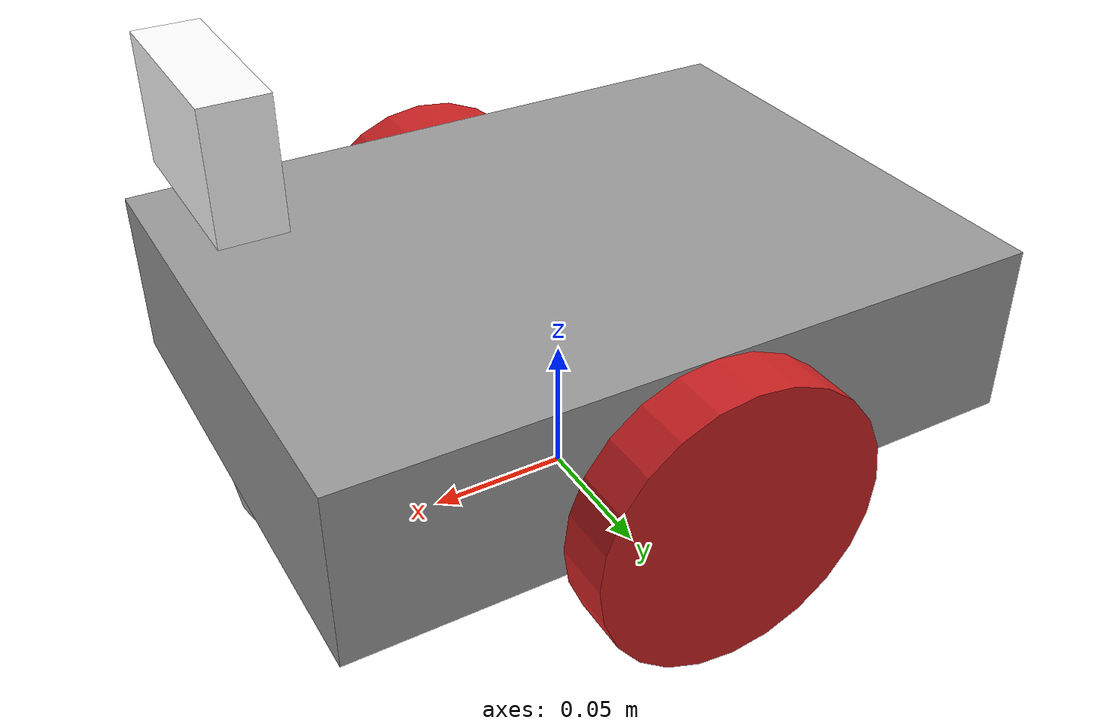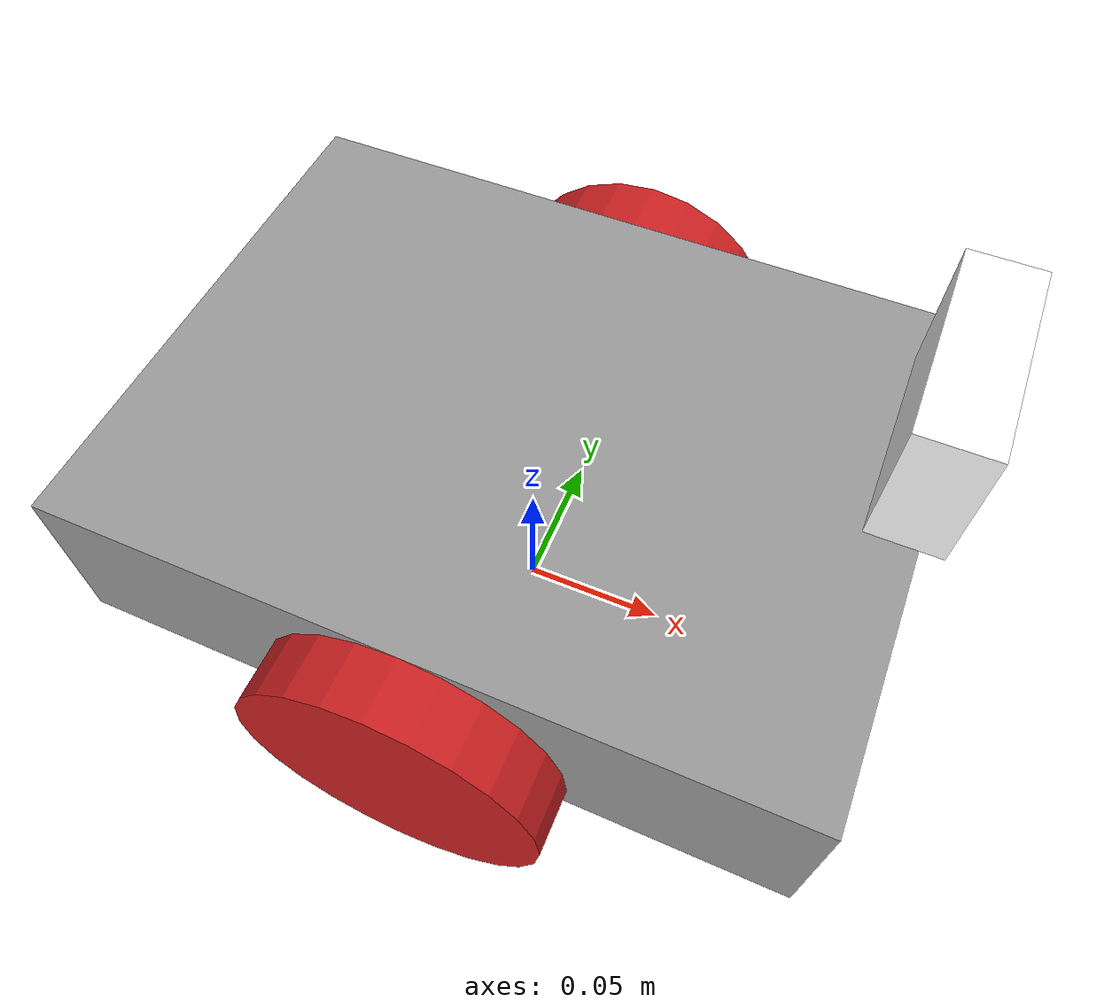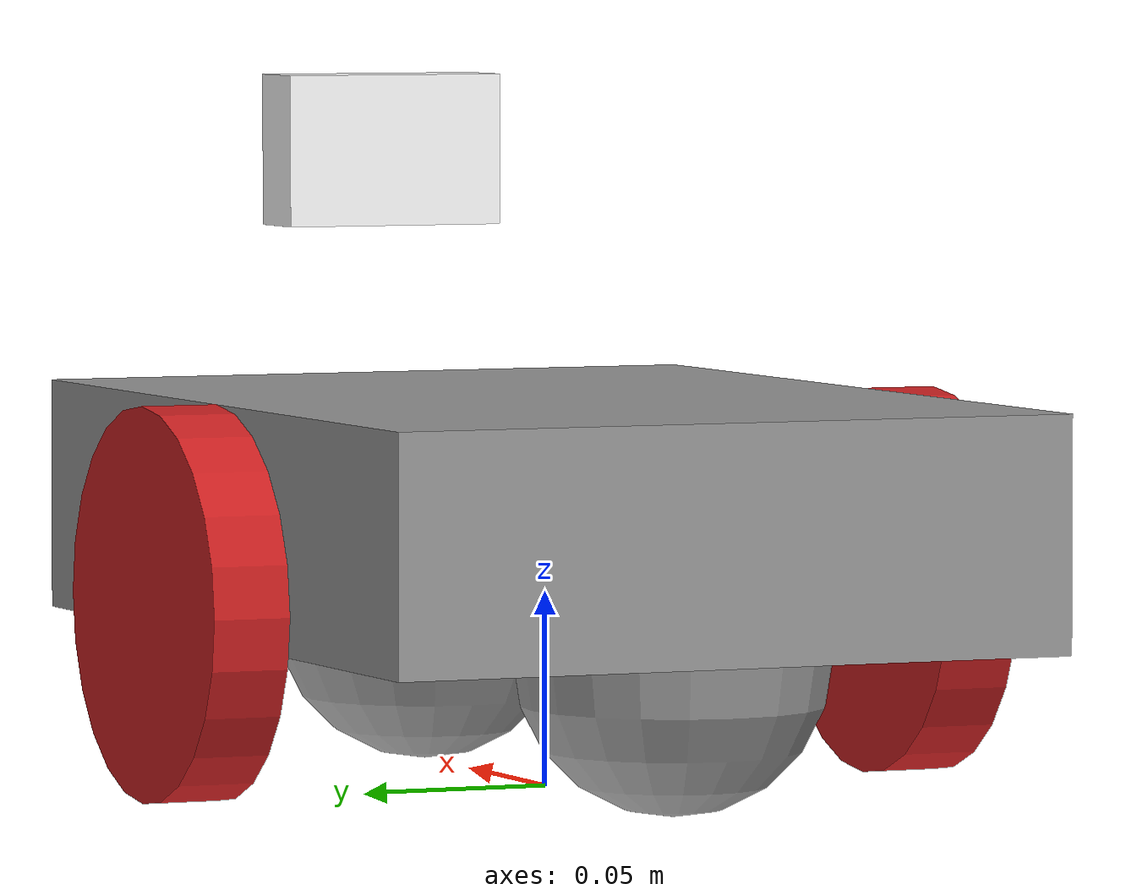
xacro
<?xml version="1.0"?>
<robot name="m2wr" xmlns:xacro="http://ros.org/wiki/xacro">

    <!-- inludes -->
    <xacro:include filename="$(find m2wr_robot)/urdf/car_driver.gazebo" />
    <xacro:include filename="$(find m2wr_robot)/urdf/wheel.xacro" />
    <xacro:include filename="$(find m2wr_robot)/urdf/caster.xacro" />
    <xacro:include filename="$(find m2wr_robot)/urdf/materials.xacro" />
    <xacro:include filename="$(find m2wr_robot)/urdf/sensor/camera.xacro" />

    <link name="base_link"/>

    <!-- body : joint -->
    <joint name="body_joint" type="fixed">
        <parent link="base_link"/>
        <child  link="body_link"/>
        <origin xyz="0 0 0.07" rpy="0 0 0"/>
    </joint>
    <!-- body : link -->
    <link name="body_link">
        <inertial>
            <origin xyz="0 0 0" rpy="0 0 0"/>
            <mass value="1.0"/>
            <inertia ixx="0.001" ixy="0.0" ixz="0.0" iyy="0.001" iyz="0.0" izz="0.001"/>
        </inertial>

        <visual>
            <origin xyz="0 0 0" rpy="0 0 0" />
            <geometry>
                <box size="0.24 0.18 0.06" />
            </geometry>
            <material name="gray" />
        </visual>
        <collision>
            <origin xyz="0 0 0" rpy="0 0 0" />
            <geometry>
                <box size="0.24 0.18 0.06" />
            </geometry>
        </collision>

    </link>
    <gazebo reference="body_link">
        <material>Gazebo/Gray</material>
    </gazebo>

    <!-- front and back caster -->
    <xacro:caster_macro prefix="back_caster" parent="base_link" xyz="-0.08 0 0.04" r="0.04"/>
    <xacro:caster_macro prefix="front_caster" parent="base_link" xyz="0.08 0 0.04" r="0.04"/>

    <!-- left and right wheel -->
    <xacro:wheel_macro prefix="left_wheel"  parent="base_link" xyz="0  0.1 0.05" r="0.05"/>
    <xacro:wheel_macro prefix="right_wheel" parent="base_link" xyz="0 -0.1 0.05" r="0.05"/>

    <!-- sensor : lidar -->
    <!-- sensor : camera -->
    <xacro:include filename="$(find m2wr_robot)/urdf/sensor/camera.gazebo" />
    <xacro:camera_macro prefix="camera" parent="base_link" xyz="0.11 0 0.16" Sxyz="0.02 0.06 0.04"/>

</robot>

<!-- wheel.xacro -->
<robot xmlns:xacro="http://ros.org/wiki/xacro">

    <xacro:macro name="wheel_macro" params="parent prefix xyz r">

        <!-- joint -->
        <joint name="${prefix}_joint" type="continuous">
            <origin xyz="${xyz}" rpy="${radians(-90)} 0 0"/>
            <parent link="${parent}"/>
            <child  link="${prefix}_link"/>
            <axis xyz="0 0 1" />
        </joint>

        <!-- link -->
        <link name="${prefix}_link">
            <inertial>
                <origin xyz="0 0 0" rpy="0 0 0"/>
                <mass value="0.1"/>
                <inertia ixx="0.0001" ixy="0.0" ixz="0.0" iyy="0.0001" iyz="0.0" izz="0.0001"/>
            </inertial>
            <visual>
                <geometry>
                    <cylinder radius="${r}" length="0.02" />
                </geometry>
                <material name="red"/>
            </visual>
            <collision>
                <geometry>
                    <cylinder radius="${r}" length="0.02" />
                </geometry>
            </collision>
        </link>

        <gazebo reference="${prefix}_link">
            <material>Gazebo/Red</material>
        </gazebo>

    </xacro:macro>

</robot>

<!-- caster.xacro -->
<robot xmlns:xacro="http://ros.org/wiki/xacro">

    <xacro:macro name="caster_macro" params="parent prefix xyz r">

        <!-- joint -->
        <joint name="${prefix}_joint" type="fixed">
            <parent link="${parent}"/>
            <child  link="${prefix}_link"/>
            <origin xyz="${xyz}" rpy="0 0 0"/>
        </joint>

        <!-- link -->
        <link name="${prefix}_link">
            <visual>
                <origin xyz="0 0 0" rpy="0 0 0" />
                <geometry>
                    <sphere radius="${r}" />
                </geometry>
                <material name="gray" />
            </visual>
            <collision>
                <origin xyz="0 0 0" rpy="0 0 0" />
                <geometry>
                    <sphere radius="${r}" />
                </geometry>
                <material name="gray" />
            </collision>
        </link>

        <gazebo reference="${prefix}_link">
            <material>Gazebo/Gray</material>
            <mu1 value="0.5" />
            <mu2 value="0.5" />
        </gazebo>

    </xacro:macro>

</robot>

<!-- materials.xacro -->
<robot xmlns:xacro="http://ros.org/wiki/xacro">
  <material name="black">
    <color rgba="0.0 0.0 0.0 1.0"/>
  </material>
  <material name="blue">
    <color rgba="0.203125 0.23828125 0.28515625 1.0"/>
  </material>
  <material name="green">
    <color rgba="0.0 0.8 0.0 1.0"/>
  </material>
  <material name="grey">
    <color rgba="0.2 0.2 0.2 1.0"/>
  </material>
  <material name="orange">
    <color rgba="1.0 0.423529411765 0.0392156862745 1.0"/>
  </material>
  <material name="brown">
    <color rgba="0.870588235294 0.811764705882 0.764705882353 1.0"/>
  </material>
  <material name="red">
    <color rgba="0.80078125 0.12890625 0.1328125 1.0"/>
  </material>
  <material name="white">
    <color rgba="1.0 1.0 1.0 1.0"/>
  </material>
</robot>

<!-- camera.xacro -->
<robot xmlns:xacro="http://ros.org/wiki/xacro">
    <xacro:macro name="camera_macro" params="parent prefix xyz Sxyz">

        <!-- sensor : link -->
        <link name="${prefix}_link">
            <!-- visual -->
            <visual>
                <geometry>
                    <box size="${Sxyz}"/>
                </geometry>
            <material name="white"/>
            </visual>
            <!-- collsion -->
            <collision>
                <geometry>
                    <box size="${Sxyz}"/>
                </geometry>
            </collision>
        </link>
        <!-- sensor : joint -->
        <joint name="${prefix}_joint" type="fixed">
            <origin xyz="${xyz}" rpy="0 0 0"/>
            <parent link="${parent}"/>
            <child link="${prefix}_link"/>
        </joint>

    </xacro:macro>

</robot>
